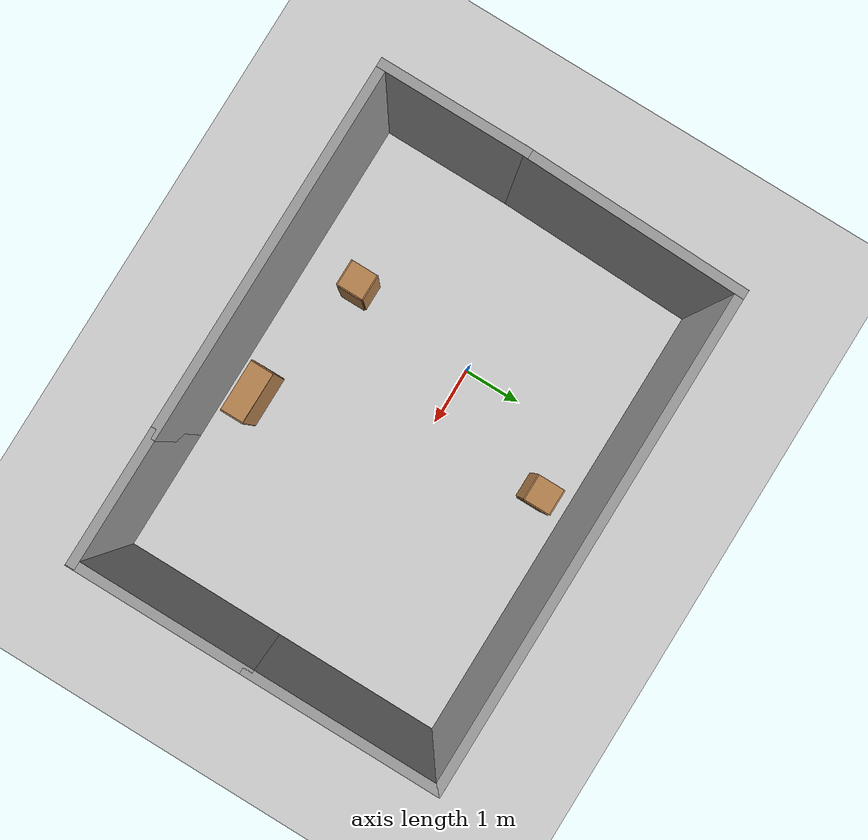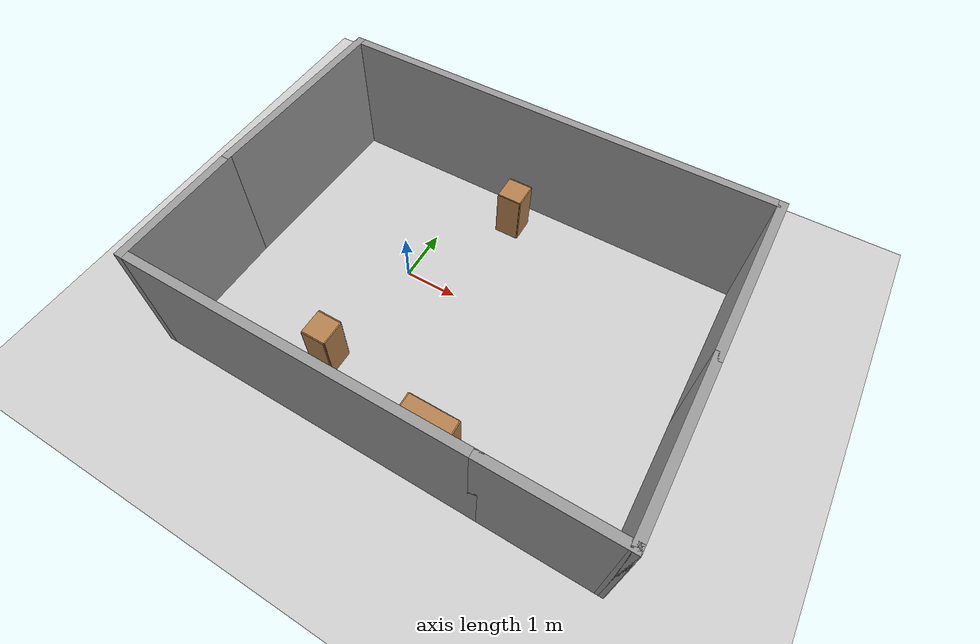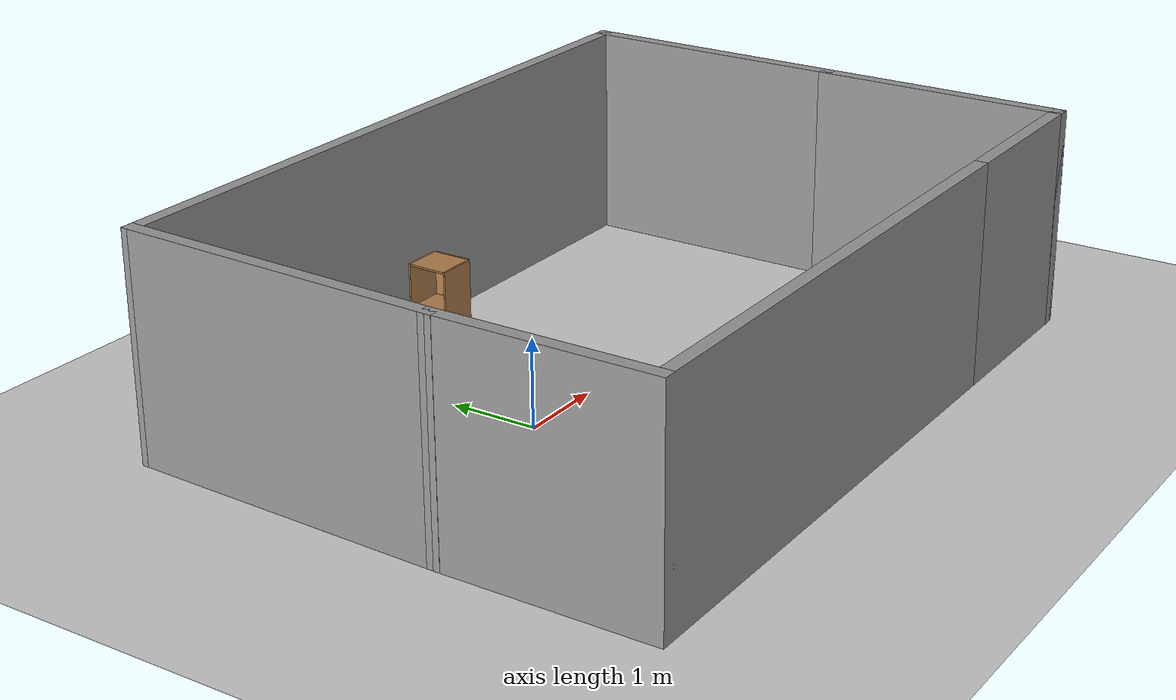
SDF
<sdf version="1.7">
 <world name="default">
  <light name="sun" type="directional">
   <pose>0 0 10 0 -0 0</pose>
   <diffuse>0.8 0.8 0.8 1</diffuse>
   <specular>0.2 0.2 0.2 1</specular>
   <attenuation>
    <range>1000</range>
    <constant>0.9</constant>
    <linear>0.01</linear>
    <quadratic>0.001</quadratic>
   </attenuation>
   <direction>-0.5 0.1 -0.9</direction>
   <spot><inner_angle>0</inner_angle><outer_angle>0</outer_angle><falloff>0</falloff></spot>
  </light>
  <model name="ground_plane">
   <static>1</static>
   <link name="link">
    <collision name="collision">
     <geometry><plane><normal>0 0 1</normal><size>100 100</size></plane></geometry>
     <surface><friction><ode><mu>100</mu><mu2>50</mu2></ode></friction></surface>
    </collision>
    <visual name="visual">
     <cast_shadows>0</cast_shadows>
     <geometry><plane><normal>0 0 1</normal><size>100 100</size></plane></geometry>
     <material>
      <script><uri>file://media/materials/scripts/gazebo.material</uri><name>Gazebo/Grey</name></script>
     </material>
    </visual>
   </link>
  </model>
  <gravity>0 0 -9.8</gravity>
  <magnetic_field>6e-06 2.3e-05 -4.2e-05</magnetic_field>
  <atmosphere type="adiabatic"/>
  <physics type="ode">
   <max_step_size>0.001</max_step_size>
   <real_time_factor>1</real_time_factor>
   <real_time_update_rate>1000</real_time_update_rate>
  </physics>
  <scene><ambient>0.4 0.4 0.4 1</ambient><background>0.7 0.7 0.7 1</background><shadows>1</shadows></scene>
  <audio><device>default</device></audio>
  <spherical_coordinates>
   <surface_model>EARTH_WGS84</surface_model>
   <latitude_deg>0</latitude_deg>
   <longitude_deg>0</longitude_deg>
   <elevation>0</elevation>
   <heading_deg>0</heading_deg>
  </spherical_coordinates>
  <model name="cabinet">
   <static>1</static>
   <link name="cabinet_bottom_plate">
    <inertial>
     <pose>0 0 -1 0 -0 0</pose>
     <inertia><ixx>2.05</ixx><ixy>0</ixy><ixz>0</ixz><iyy>2.05</iyy><iyz>0</iyz><izz>2.05</izz></inertia>
     <mass>25</mass>
    </inertial>
    <collision name="cabinet_bottom_plate_geom">
     <pose>0 0 0.01 0 -0 0</pose>
     <geometry><box><size>0.45 0.45 0.02</size></box></geometry>
    </collision>
    <visual name="cabinet_bottom_plate_geom_visual">
     <pose>0 0 0.01 0 -0 0</pose>
     <geometry><box><size>0.45 0.45 0.02</size></box></geometry>
     <material>
      <script><uri>file://media/materials/scripts/gazebo.material</uri><name>Gazebo/Wood</name></script>
     </material>
    </visual>
    <collision name="cabinet_bottom_plate_geom_cabinet_back_plate">
     <pose>0.235 0 0.51 0 -0 0</pose>
     <geometry><box><size>0.02 0.45 1.02</size></box></geometry>
    </collision>
    <visual name="cabinet_bottom_plate_geom_cabinet_back_plate_visual">
     <pose>0.235 0 0.51 0 -0 0</pose>
     <geometry><box><size>0.02 0.45 1.02</size></box></geometry>
     <material>
      <script><uri>file://media/materials/scripts/gazebo.material</uri><name>Gazebo/Wood</name></script>
     </material>
    </visual>
    <collision name="cabinet_bottom_plate_geom_cabinet_left_plate">
     <pose>0 0.235 0.51 0 -0 0</pose>
     <geometry><box><size>0.45 0.02 1.02</size></box></geometry>
    </collision>
    <visual name="cabinet_bottom_plate_geom_cabinet_left_plate_visual">
     <pose>0 0.235 0.51 0 -0 0</pose>
     <geometry><box><size>0.45 0.02 1.02</size></box></geometry>
     <material>
      <script><uri>file://media/materials/scripts/gazebo.material</uri><name>Gazebo/Wood</name></script>
     </material>
    </visual>
    <collision name="cabinet_bottom_plate_geom_cabinet_middle_plate">
     <pose>0 0 0.51 0 -0 0</pose>
     <geometry><box><size>0.45 0.45 0.02</size></box></geometry>
    </collision>
    <visual name="cabinet_bottom_plate_geom_cabinet_middle_plate_visual">
     <pose>0 0 0.51 0 -0 0</pose>
     <geometry><box><size>0.45 0.45 0.02</size></box></geometry>
     <material>
      <script><uri>file://media/materials/scripts/gazebo.material</uri><name>Gazebo/Wood</name></script>
     </material>
    </visual>
    <collision name="cabinet_bottom_plate_geom_cabinet_right_plate">
     <pose>0 -0.235 0.51 0 -0 0</pose>
     <geometry><box><size>0.45 0.02 1.02</size></box></geometry>
    </collision>
    <visual name="cabinet_bottom_plate_geom_cabinet_right_plate_visual">
     <pose>0 -0.235 0.51 0 -0 0</pose>
     <geometry><box><size>0.45 0.02 1.02</size></box></geometry>
     <material>
      <script><uri>file://media/materials/scripts/gazebo.material</uri><name>Gazebo/Wood</name></script>
     </material>
    </visual>
    <collision name="cabinet_bottom_plate_geom_cabinet_top_plate">
     <pose>0 0 1.01 0 -0 0</pose>
     <geometry><box><size>0.45 0.45 0.02</size></box></geometry>
    </collision>
    <visual name="cabinet_bottom_plate_geom_cabinet_top_plate_visual">
     <pose>0 0 1.01 0 -0 0</pose>
     <geometry><box><size>0.45 0.45 0.02</size></box></geometry>
     <material>
      <script><uri>file://media/materials/scripts/gazebo.material</uri><name>Gazebo/Wood</name></script>
     </material>
    </visual>
   </link>
   <pose>1.11464 2.02319 0 0 -0 0</pose>
  </model>
  <model name="cabinet_0">
   <static>1</static>
   <link name="cabinet_bottom_plate">
    <inertial>
     <pose>0 0 -1 0 -0 0</pose>
     <inertia><ixx>2.05</ixx><ixy>0</ixy><ixz>0</ixz><iyy>2.05</iyy><iyz>0</iyz><izz>2.05</izz></inertia>
     <mass>25</mass>
    </inertial>
    <collision name="cabinet_bottom_plate_geom">
     <pose>0 0 0.01 0 -0 0</pose>
     <geometry><box><size>0.45 0.45 0.02</size></box></geometry>
    </collision>
    <visual name="cabinet_bottom_plate_geom_visual">
     <pose>0 0 0.01 0 -0 0</pose>
     <geometry><box><size>0.45 0.45 0.02</size></box></geometry>
     <material>
      <script><uri>file://media/materials/scripts/gazebo.material</uri><name>Gazebo/Wood</name></script>
     </material>
    </visual>
    <collision name="cabinet_bottom_plate_geom_cabinet_back_plate">
     <pose>0.235 0 0.51 0 -0 0</pose>
     <geometry><box><size>0.02 0.45 1.02</size></box></geometry>
    </collision>
    <visual name="cabinet_bottom_plate_geom_cabinet_back_plate_visual">
     <pose>0.235 0 0.51 0 -0 0</pose>
     <geometry><box><size>0.02 0.45 1.02</size></box></geometry>
     <material>
      <script><uri>file://media/materials/scripts/gazebo.material</uri><name>Gazebo/Wood</name></script>
     </material>
    </visual>
    <collision name="cabinet_bottom_plate_geom_cabinet_left_plate">
     <pose>0 0.235 0.51 0 -0 0</pose>
     <geometry><box><size>0.45 0.02 1.02</size></box></geometry>
    </collision>
    <visual name="cabinet_bottom_plate_geom_cabinet_left_plate_visual">
     <pose>0 0.235 0.51 0 -0 0</pose>
     <geometry><box><size>0.45 0.02 1.02</size></box></geometry>
     <material>
      <script><uri>file://media/materials/scripts/gazebo.material</uri><name>Gazebo/Wood</name></script>
     </material>
    </visual>
    <collision name="cabinet_bottom_plate_geom_cabinet_middle_plate">
     <pose>0 0 0.51 0 -0 0</pose>
     <geometry><box><size>0.45 0.45 0.02</size></box></geometry>
    </collision>
    <visual name="cabinet_bottom_plate_geom_cabinet_middle_plate_visual">
     <pose>0 0 0.51 0 -0 0</pose>
     <geometry><box><size>0.45 0.45 0.02</size></box></geometry>
     <material>
      <script><uri>file://media/materials/scripts/gazebo.material</uri><name>Gazebo/Wood</name></script>
     </material>
    </visual>
    <collision name="cabinet_bottom_plate_geom_cabinet_right_plate">
     <pose>0 -0.235 0.51 0 -0 0</pose>
     <geometry><box><size>0.45 0.02 1.02</size></box></geometry>
    </collision>
    <visual name="cabinet_bottom_plate_geom_cabinet_right_plate_visual">
     <pose>0 -0.235 0.51 0 -0 0</pose>
     <geometry><box><size>0.45 0.02 1.02</size></box></geometry>
     <material>
      <script><uri>file://media/materials/scripts/gazebo.material</uri><name>Gazebo/Wood</name></script>
     </material>
    </visual>
    <collision name="cabinet_bottom_plate_geom_cabinet_top_plate">
     <pose>0 0 1.01 0 -0 0</pose>
     <geometry><box><size>0.45 0.45 0.02</size></box></geometry>
    </collision>
    <visual name="cabinet_bottom_plate_geom_cabinet_top_plate_visual">
     <pose>0 0 1.01 0 -0 0</pose>
     <geometry><box><size>0.45 0.45 0.02</size></box></geometry>
     <material>
      <script><uri>file://media/materials/scripts/gazebo.material</uri><name>Gazebo/Wood</name></script>
     </material>
    </visual>
   </link>
   <pose>-0.208505 -2.20092 0 0 -0 0</pose>
  </model>
  <model name="bookshelf">
   <static>1</static>
   <link name="link">
    <inertial><mass>1</mass></inertial>
    <collision name="back">
     <pose>0 0.005 0.6 0 -0 0</pose>
     <geometry><box><size>0.9 0.01 1.2</size></box></geometry>
    </collision>
    <visual name="visual1">
     <pose>0 0.005 0.6 0 -0 0</pose>
     <geometry><box><size>0.9 0.01 1.2</size></box></geometry>
     <material>
      <script><uri>file://media/materials/scripts/gazebo.material</uri><name>Gazebo/Wood</name></script>
     </material>
    </visual>
    <collision name="left_side">
     <pose>0.45 -0.195 0.6 0 -0 0</pose>
     <geometry><box><size>0.02 0.4 1.2</size></box></geometry>
    </collision>
    <visual name="visual2">
     <pose>0.45 -0.195 0.6 0 -0 0</pose>
     <geometry><box><size>0.02 0.4 1.2</size></box></geometry>
     <material>
      <script><uri>file://media/materials/scripts/gazebo.material</uri><name>Gazebo/Wood</name></script>
     </material>
    </visual>
    <collision name="right_side">
     <pose>-0.45 -0.195 0.6 0 -0 0</pose>
     <geometry><box><size>0.02 0.4 1.2</size></box></geometry>
    </collision>
    <visual name="visual3">
     <pose>-0.45 -0.195 0.6 0 -0 0</pose>
     <geometry><box><size>0.02 0.4 1.2</size></box></geometry>
     <material>
      <script><uri>file://media/materials/scripts/gazebo.material</uri><name>Gazebo/Wood</name></script>
     </material>
    </visual>
    <collision name="bottom">
     <pose>0 -0.195 0.03 0 -0 0</pose>
     <geometry><box><size>0.88 0.4 0.06</size></box></geometry>
    </collision>
    <visual name="visual4">
     <pose>0 -0.195 0.03 0 -0 0</pose>
     <geometry><box><size>0.88 0.4 0.06</size></box></geometry>
     <material>
      <script><uri>file://media/materials/scripts/gazebo.material</uri><name>Gazebo/Wood</name></script>
     </material>
    </visual>
    <collision name="top">
     <pose>0 -0.195 1.19 0 -0 0</pose>
     <geometry><box><size>0.88 0.4 0.02</size></box></geometry>
    </collision>
    <visual name="visual5">
     <pose>0 -0.195 1.19 0 -0 0</pose>
     <geometry><box><size>0.88 0.4 0.02</size></box></geometry>
     <material>
      <script><uri>file://media/materials/scripts/gazebo.material</uri><name>Gazebo/Wood</name></script>
     </material>
    </visual>
    <collision name="low_shelf">
     <pose>0 -0.195 0.43 0 -0 0</pose>
     <geometry><box><size>0.88 0.4 0.02</size></box></geometry>
    </collision>
    <visual name="visual6">
     <pose>0 -0.195 0.43 0 -0 0</pose>
     <geometry><box><size>0.88 0.4 0.02</size></box></geometry>
     <material>
      <script><uri>file://media/materials/scripts/gazebo.material</uri><name>Gazebo/Wood</name></script>
     </material>
    </visual>
    <collision name="high_shelf">
     <pose>0 -0.195 0.8 0 -0 0</pose>
     <geometry><box><size>0.88 0.4 0.02</size></box></geometry>
    </collision>
    <visual name="visual7">
     <pose>0 -0.195 0.8 0 -0 0</pose>
     <geometry><box><size>0.88 0.4 0.02</size></box></geometry>
     <material>
      <script><uri>file://media/materials/scripts/gazebo.material</uri><name>Gazebo/Wood</name></script>
     </material>
    </visual>
   </link>
   <pose>2.16558 -2.51409 0 0 -0 0</pose>
  </model>
  <model name="Untitled">
   <pose>1.30387 -0.29387 0 0 -0 0</pose>
   <link name="Wall_0">
    <collision name="Wall_0_Collision">
     <geometry><box><size>2.5 0.15 2.5</size></box></geometry>
     <pose>0 0 1.25 0 -0 0</pose>
    </collision>
    <visual name="Wall_0_Visual">
     <pose>0 0 1.25 0 -0 0</pose>
     <geometry><box><size>2.5 0.15 2.5</size></box></geometry>
     <material>
      <script><uri>file://media/materials/scripts/gazebo.material</uri><name>Gazebo/Grey</name></script>
      <ambient>1 1 1 1</ambient>
     </material>
     <meta><layer>0</layer></meta>
    </visual>
    <pose>-4.10387 -1.80113 0 0 -0 -1.5708</pose>
   </link>
   <link name="Wall_10">
    <collision name="Wall_10_Collision">
     <geometry><box><size>3.75168 0.15 2.5</size></box></geometry>
     <pose>0 0 1.25 0 -0 0</pose>
    </collision>
    <visual name="Wall_10_Visual">
     <pose>0 0 1.25 0 -0 0</pose>
     <geometry><box><size>3.75168 0.15 2.5</size></box></geometry>
     <material>
      <script><uri>file://media/materials/scripts/gazebo.material</uri><name>Gazebo/Grey</name></script>
      <ambient>1 1 1 1</ambient>
     </material>
     <meta><layer>0</layer></meta>
    </visual>
    <pose>-4.04887 1.17387 0 0 -0 -1.60134</pose>
   </link>
   <link name="Wall_2">
    <collision name="Wall_2_Collision">
     <geometry><box><size>6.25 0.15 2.5</size></box></geometry>
     <pose>0 0 1.25 0 -0 0</pose>
    </collision>
    <visual name="Wall_2_Visual">
     <pose>0 0 1.25 0 -0 0</pose>
     <geometry><box><size>6.25 0.15 2.5</size></box></geometry>
     <material>
      <script><uri>file://media/materials/scripts/gazebo.material</uri><name>Gazebo/Grey</name></script>
      <ambient>1 1 1 1</ambient>
     </material>
     <meta><layer>0</layer></meta>
    </visual>
    <pose>-1.05387 -2.97613 0 0 -0 0</pose>
   </link>
   <link name="Wall_4">
    <collision name="Wall_4_Collision">
     <geometry><box><size>2.25 0.15 2.5</size></box></geometry>
     <pose>0 0 1.25 0 -0 0</pose>
    </collision>
    <visual name="Wall_4_Visual">
     <pose>0 0 1.25 0 -0 0</pose>
     <geometry><box><size>2.25 0.15 2.5</size></box></geometry>
     <material>
      <script><uri>file://media/materials/scripts/gazebo.material</uri><name>Gazebo/Grey</name></script>
      <ambient>1 1 1 1</ambient>
     </material>
     <meta><layer>0</layer></meta>
    </visual>
    <pose>3.04613 -2.97613 0 0 -0 0</pose>
   </link>
   <link name="Wall_5">
    <collision name="Wall_5_Collision">
     <geometry><box><size>0.16 0.15 2.5</size></box></geometry>
     <pose>0 0 1.25 0 -0 0</pose>
    </collision>
    <visual name="Wall_5_Visual">
     <pose>0 0 1.25 0 -0 0</pose>
     <geometry><box><size>0.16 0.15 2.5</size></box></geometry>
     <material>
      <script><uri>file://media/materials/scripts/gazebo.material</uri><name>Gazebo/Grey</name></script>
      <ambient>1 1 1 1</ambient>
     </material>
     <meta><layer>0</layer></meta>
    </visual>
    <pose>4.10113 -2.97613 0 0 -0 0</pose>
   </link>
   <link name="Wall_6">
    <collision name="Wall_6_Collision">
     <geometry><box><size>3 0.15 2.5</size></box></geometry>
     <pose>0 0 1.25 0 -0 0</pose>
    </collision>
    <visual name="Wall_6_Visual">
     <pose>0 0 1.25 0 -0 0</pose>
     <geometry><box><size>3 0.15 2.5</size></box></geometry>
     <material>
      <script><uri>file://media/materials/scripts/gazebo.material</uri><name>Gazebo/Grey</name></script>
      <ambient>1 1 1 1</ambient>
     </material>
     <meta><layer>0</layer></meta>
    </visual>
    <pose>4.10613 -1.55113 0 0 -0 1.5708</pose>
   </link>
   <link name="Wall_8">
    <collision name="Wall_8_Collision">
     <geometry><box><size>3.25 0.15 2.5</size></box></geometry>
     <pose>0 0 1.25 0 -0 0</pose>
    </collision>
    <visual name="Wall_8_Visual">
     <pose>0 0 1.25 0 -0 0</pose>
     <geometry><box><size>3.25 0.15 2.5</size></box></geometry>
     <material>
      <script><uri>file://media/materials/scripts/gazebo.material</uri><name>Gazebo/Grey</name></script>
      <ambient>1 1 1 1</ambient>
     </material>
     <meta><layer>0</layer></meta>
    </visual>
    <pose>4.10613 1.42387 0 0 -0 1.5708</pose>
   </link>
   <link name="Wall_9">
    <collision name="Wall_9_Collision">
     <geometry><box><size>8.25 0.15 2.5</size></box></geometry>
     <pose>0 0 1.25 0 -0 0</pose>
    </collision>
    <visual name="Wall_9_Visual">
     <pose>0 0 1.25 0 -0 0</pose>
     <geometry><box><size>8.25 0.15 2.5</size></box></geometry>
     <material>
      <script><uri>file://media/materials/scripts/gazebo.material</uri><name>Gazebo/Grey</name></script>
      <ambient>1 1 1 1</ambient>
     </material>
     <meta><layer>0</layer></meta>
    </visual>
    <pose>0.056128 2.97387 0 0 -0 3.14159</pose>
   </link>
   <static>1</static>
  </model>
 </world>
</sdf>
